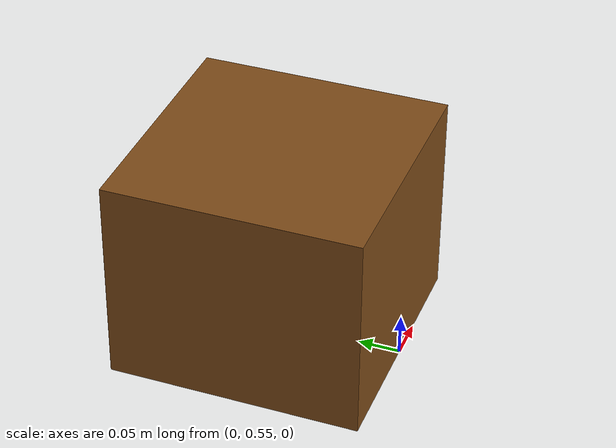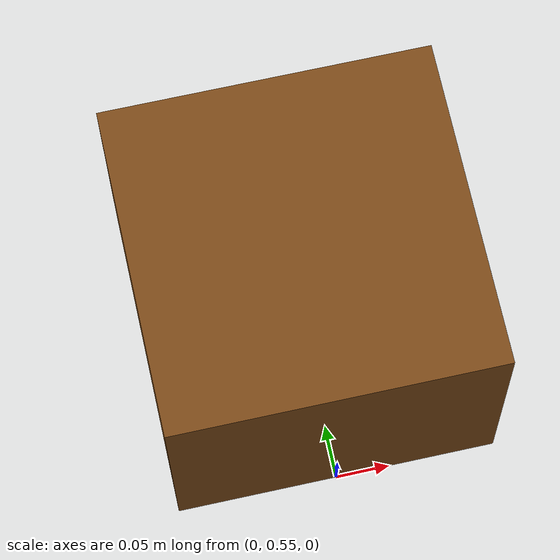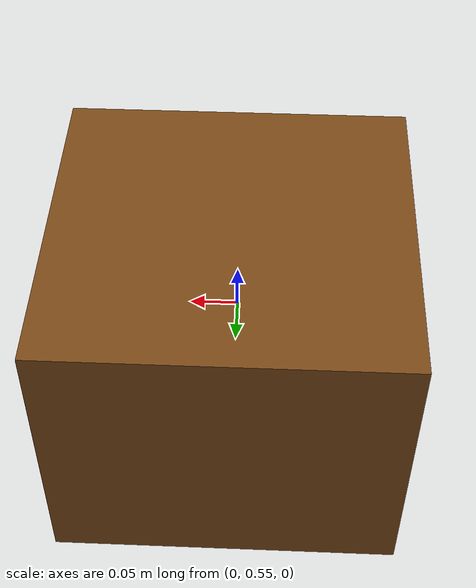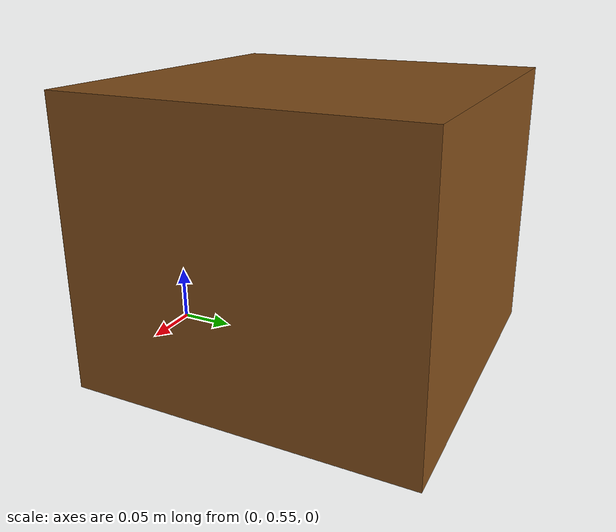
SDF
<?xml version="1.0" ?>
<sdf version="1.6">
  <model name="table">
    <static>true</static>
    <pose>0.0 0.7 0.125 0 0 0</pose>
    <link name="table_link">
      <collision name="collision">
        <geometry>
          <box>
            <size>0.3 0.3 0.25</size>
          </box>
        </geometry>
      </collision>
      <visual name="visual">
        <geometry>
          <box>
            <size>0.3 0.3 0.25</size>
          </box>
        </geometry>
        <material><ambient>0.5 0.3 0.1 1</ambient></material>
      </visual>
    </link>
  </model>
</sdf>
